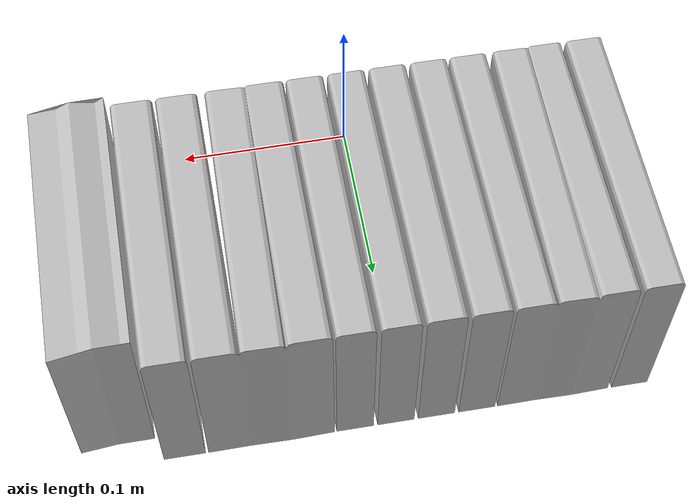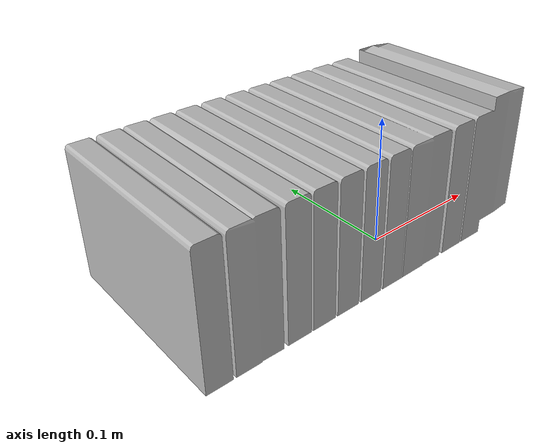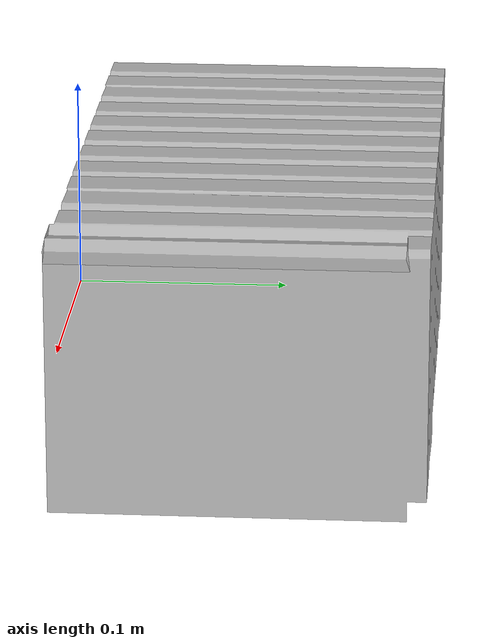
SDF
<?xml version="1.0" ?>
<sdf version="1.4">
  <model name="shelf3_book3_v1">
    <link name="body">
      <pose>0 0 0 0 0 0</pose>
      <inertial>
        <pose>   0.007835   0.086606   0.006570 0 0 0</pose>
        <mass>0.5</mass>
        <inertia>
          <ixx>0.01</ixx>
          <ixy>0</ixy>
          <ixz>0</ixz>
          <iyy>0.01</iyy>
          <iyz>0</iyz>
          <izz>0.01</izz>
        </inertia>
      </inertial>
      <collision name="collision">
        <geometry>
          <mesh>
            <uri>model://bookshelf/shelf3_items/book3_v1/book3_v1.dae</uri>
          </mesh>
        </geometry>
      </collision>
      <visual name="visual">
        <geometry>
          <mesh>
            <uri>model://bookshelf/shelf3_items/book3_v1/book3_v1.dae</uri>
          </mesh>
        </geometry>
      </visual>
    </link>
  </model>
</sdf>
